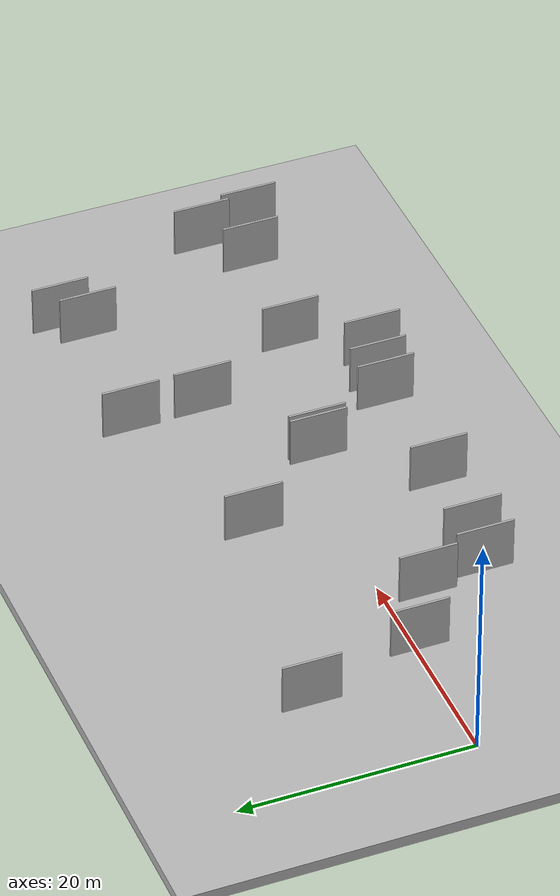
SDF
<?xml version="1.0" encoding="utf-8"?>

<sdf version="1.6">

   <world name="default">

      <gui fullscreen="0">

         <camera name="user_camera">

            <pose>-15 0 4.57585 0 0 0</pose>

            <view_controller>orbit</view_controller>

         </camera>

      </gui>

      <scene>

         <sky>

           <clouds>

             <speed>12</speed>

           </clouds>

         </sky>

         <ambient>0.4 0.4 0.4 1</ambient>

         <background>0.7 0.7 0.7 1</background>

         <shadows>1</shadows>

      </scene>

      <gravity>0 0 -9.8066</gravity>

      <magnetic_field>6e-06 2.3e-05 -4.2e-05</magnetic_field>

      <physics default="0" name="default_physics" type="ode">

         <ode>

            <solver>

               <type>quick</type>

               <iters>10</iters>

               <sor>1.0</sor>

               <use_dynamic_moi_rescaling>0</use_dynamic_moi_rescaling>

            </solver>

            <constraints>

               <cfm>0</cfm>

               <erp>0.2</erp>

               <contact_max_correcting_vel>100</contact_max_correcting_vel>

               <contact_surface_layer>0.001</contact_surface_layer>

            </constraints>

         </ode>

         <max_step_size>0.004</max_step_size>

         <real_time_factor>1</real_time_factor>

         <real_time_update_rate>250</real_time_update_rate>

      </physics>

      <light name="sun" type="directional">

         <cast_shadows>1</cast_shadows>

         <pose>0 0 10 0 0 0</pose>

         <diffuse>0.8 0.8 0.8 1</diffuse>

         <specular>0.2 0.2 0.2 1</specular>

         <attenuation>

            <range>1000</range>

            <constant>0.9</constant>

            <linear>0.01</linear>

            <quadratic>0.001</quadratic>

         </attenuation>

         <direction>-0.5 0.1 -0.9</direction>

      </light>

      <include>

         <name>ground_plane_1</name>

         <uri>model://HANNAS_ground_plane</uri>

         <pose>0 0 0  0 0 0</pose>

      </include>

      <include>

         <name>ground_plane_2</name>

         <uri>model://HANNAS_ground_plane</uri>

         <pose>100 0 0  0 0 0</pose>

      </include>

      <model name="HANNAS_wall_1">

         <static>1</static>

         <pose frame="">45.6797 4.8200 0.0 0.000000 0.000000 1.570796</pose>

         <link name="link">

            <pose frame="">0 0 2.50 0 0 0</pose>

            <collision name="collision">

               <geometry>

                  <box>

                     <size>5.00 0.2 5.00</size>

                  </box>

               </geometry>

               <max_contacts>10</max_contacts>

               <surface>

                  <contact>

                     <ode/>

                  </contact>

                  <bounce/>

                  <friction>

                     <torsional>

                        <ode/>

                     </torsional>

                     <ode/>

                  </friction>

               </surface>

            </collision>

            <visual name="visual">

               <cast_shadows>0</cast_shadows>

               <geometry>

                  <box>

                     <size>5.00 0.2 5.00</size>

                  </box>

               </geometry>

               <material>

                  <script>

                     <uri>model://HANNAS_wall/materials/scripts</uri>

                     <uri>model://HANNAS_wall/materials/textures</uri>

                     <name>vrc/HANNAS_wall</name>

                  </script>

               </material>

            </visual>

            <self_collide>0</self_collide>

            <enable_wind>0</enable_wind>

            <kinematic>0</kinematic>

         </link>

      </model>

      <model name="HANNAS_wall_2">

         <static>1</static>

         <pose frame="">29.6379 6.7200 0.0 0.000000 0.000000 1.570796</pose>

         <link name="link">

            <pose frame="">0 0 2.50 0 0 0</pose>

            <collision name="collision">

               <geometry>

                  <box>

                     <size>5.00 0.2 5.00</size>

                  </box>

               </geometry>

               <max_contacts>10</max_contacts>

               <surface>

                  <contact>

                     <ode/>

                  </contact>

                  <bounce/>

                  <friction>

                     <torsional>

                        <ode/>

                     </torsional>

                     <ode/>

                  </friction>

               </surface>

            </collision>

            <visual name="visual">

               <cast_shadows>0</cast_shadows>

               <geometry>

                  <box>

                     <size>5.00 0.2 5.00</size>

                  </box>

               </geometry>

               <material>

                  <script>

                     <uri>model://HANNAS_wall/materials/scripts</uri>

                     <uri>model://HANNAS_wall/materials/textures</uri>

                     <name>vrc/HANNAS_wall</name>

                  </script>

               </material>

            </visual>

            <self_collide>0</self_collide>

            <enable_wind>0</enable_wind>

            <kinematic>0</kinematic>

         </link>

      </model>

      <model name="HANNAS_wall_3">

         <static>1</static>

         <pose frame="">21.6949 -8.9575 0.0 0.000000 0.000000 1.570796</pose>

         <link name="link">

            <pose frame="">0 0 2.50 0 0 0</pose>

            <collision name="collision">

               <geometry>

                  <box>

                     <size>5.00 0.2 5.00</size>

                  </box>

               </geometry>

               <max_contacts>10</max_contacts>

               <surface>

                  <contact>

                     <ode/>

                  </contact>

                  <bounce/>

                  <friction>

                     <torsional>

                        <ode/>

                     </torsional>

                     <ode/>

                  </friction>

               </surface>

            </collision>

            <visual name="visual">

               <cast_shadows>0</cast_shadows>

               <geometry>

                  <box>

                     <size>5.00 0.2 5.00</size>

                  </box>

               </geometry>

               <material>

                  <script>

                     <uri>model://HANNAS_wall/materials/scripts</uri>

                     <uri>model://HANNAS_wall/materials/textures</uri>

                     <name>vrc/HANNAS_wall</name>

                  </script>

               </material>

            </visual>

            <self_collide>0</self_collide>

            <enable_wind>0</enable_wind>

            <kinematic>0</kinematic>

         </link>

      </model>

      <model name="HANNAS_wall_4">

         <static>1</static>

         <pose frame="">60.6124 11.7490 0.0 0.000000 0.000000 1.570796</pose>

         <link name="link">

            <pose frame="">0 0 2.50 0 0 0</pose>

            <collision name="collision">

               <geometry>

                  <box>

                     <size>5.00 0.2 5.00</size>

                  </box>

               </geometry>

               <max_contacts>10</max_contacts>

               <surface>

                  <contact>

                     <ode/>

                  </contact>

                  <bounce/>

                  <friction>

                     <torsional>

                        <ode/>

                     </torsional>

                     <ode/>

                  </friction>

               </surface>

            </collision>

            <visual name="visual">

               <cast_shadows>0</cast_shadows>

               <geometry>

                  <box>

                     <size>5.00 0.2 5.00</size>

                  </box>

               </geometry>

               <material>

                  <script>

                     <uri>model://HANNAS_wall/materials/scripts</uri>

                     <uri>model://HANNAS_wall/materials/textures</uri>

                     <name>vrc/HANNAS_wall</name>

                  </script>

               </material>

            </visual>

            <self_collide>0</self_collide>

            <enable_wind>0</enable_wind>

            <kinematic>0</kinematic>

         </link>

      </model>

      <model name="HANNAS_wall_5">

         <static>1</static>

         <pose frame="">46.8359 -10.7988 0.0 0.000000 0.000000 1.570796</pose>

         <link name="link">

            <pose frame="">0 0 2.50 0 0 0</pose>

            <collision name="collision">

               <geometry>

                  <box>

                     <size>5.00 0.2 5.00</size>

                  </box>

               </geometry>

               <max_contacts>10</max_contacts>

               <surface>

                  <contact>

                     <ode/>

                  </contact>

                  <bounce/>

                  <friction>

                     <torsional>

                        <ode/>

                     </torsional>

                     <ode/>

                  </friction>

               </surface>

            </collision>

            <visual name="visual">

               <cast_shadows>0</cast_shadows>

               <geometry>

                  <box>

                     <size>5.00 0.2 5.00</size>

                  </box>

               </geometry>

               <material>

                  <script>

                     <uri>model://HANNAS_wall/materials/scripts</uri>

                     <uri>model://HANNAS_wall/materials/textures</uri>

                     <name>vrc/HANNAS_wall</name>

                  </script>

               </material>

            </visual>

            <self_collide>0</self_collide>

            <enable_wind>0</enable_wind>

            <kinematic>0</kinematic>

         </link>

      </model>

      <model name="HANNAS_wall_6">

         <static>1</static>

         <pose frame="">58.5026 10.0722 0.0 0.000000 0.000000 1.570796</pose>

         <link name="link">

            <pose frame="">0 0 2.50 0 0 0</pose>

            <collision name="collision">

               <geometry>

                  <box>

                     <size>5.00 0.2 5.00</size>

                  </box>

               </geometry>

               <max_contacts>10</max_contacts>

               <surface>

                  <contact>

                     <ode/>

                  </contact>

                  <bounce/>

                  <friction>

                     <torsional>

                        <ode/>

                     </torsional>

                     <ode/>

                  </friction>

               </surface>

            </collision>

            <visual name="visual">

               <cast_shadows>0</cast_shadows>

               <geometry>

                  <box>

                     <size>5.00 0.2 5.00</size>

                  </box>

               </geometry>

               <material>

                  <script>

                     <uri>model://HANNAS_wall/materials/scripts</uri>

                     <uri>model://HANNAS_wall/materials/textures</uri>

                     <name>vrc/HANNAS_wall</name>

                  </script>

               </material>

            </visual>

            <self_collide>0</self_collide>

            <enable_wind>0</enable_wind>

            <kinematic>0</kinematic>

         </link>

      </model>

      <model name="HANNAS_wall_7">

         <static>1</static>

         <pose frame="">8.7439 10.2297 0.0 0.000000 0.000000 1.570796</pose>

         <link name="link">

            <pose frame="">0 0 2.50 0 0 0</pose>

            <collision name="collision">

               <geometry>

                  <box>

                     <size>5.00 0.2 5.00</size>

                  </box>

               </geometry>

               <max_contacts>10</max_contacts>

               <surface>

                  <contact>

                     <ode/>

                  </contact>

                  <bounce/>

                  <friction>

                     <torsional>

                        <ode/>

                     </torsional>

                     <ode/>

                  </friction>

               </surface>

            </collision>

            <visual name="visual">

               <cast_shadows>0</cast_shadows>

               <geometry>

                  <box>

                     <size>5.00 0.2 5.00</size>

                  </box>

               </geometry>

               <material>

                  <script>

                     <uri>model://HANNAS_wall/materials/scripts</uri>

                     <uri>model://HANNAS_wall/materials/textures</uri>

                     <name>vrc/HANNAS_wall</name>

                  </script>

               </material>

            </visual>

            <self_collide>0</self_collide>

            <enable_wind>0</enable_wind>

            <kinematic>0</kinematic>

         </link>

      </model>

      <model name="HANNAS_wall_8">

         <static>1</static>

         <pose frame="">62.4866 -6.1760 0.0 0.000000 0.000000 1.570796</pose>

         <link name="link">

            <pose frame="">0 0 2.50 0 0 0</pose>

            <collision name="collision">

               <geometry>

                  <box>

                     <size>5.00 0.2 5.00</size>

                  </box>

               </geometry>

               <max_contacts>10</max_contacts>

               <surface>

                  <contact>

                     <ode/>

                  </contact>

                  <bounce/>

                  <friction>

                     <torsional>

                        <ode/>

                     </torsional>

                     <ode/>

                  </friction>

               </surface>

            </collision>

            <visual name="visual">

               <cast_shadows>0</cast_shadows>

               <geometry>

                  <box>

                     <size>5.00 0.2 5.00</size>

                  </box>

               </geometry>

               <material>

                  <script>

                     <uri>model://HANNAS_wall/materials/scripts</uri>

                     <uri>model://HANNAS_wall/materials/textures</uri>

                     <name>vrc/HANNAS_wall</name>

                  </script>

               </material>

            </visual>

            <self_collide>0</self_collide>

            <enable_wind>0</enable_wind>

            <kinematic>0</kinematic>

         </link>

      </model>

      <model name="HANNAS_wall_9">

         <static>1</static>

         <pose frame="">29.7878 -9.4977 0.0 0.000000 0.000000 1.570796</pose>

         <link name="link">

            <pose frame="">0 0 2.50 0 0 0</pose>

            <collision name="collision">

               <geometry>

                  <box>

                     <size>5.00 0.2 5.00</size>

                  </box>

               </geometry>

               <max_contacts>10</max_contacts>

               <surface>

                  <contact>

                     <ode/>

                  </contact>

                  <bounce/>

                  <friction>

                     <torsional>

                        <ode/>

                     </torsional>

                     <ode/>

                  </friction>

               </surface>

            </collision>

            <visual name="visual">

               <cast_shadows>0</cast_shadows>

               <geometry>

                  <box>

                     <size>5.00 0.2 5.00</size>

                  </box>

               </geometry>

               <material>

                  <script>

                     <uri>model://HANNAS_wall/materials/scripts</uri>

                     <uri>model://HANNAS_wall/materials/textures</uri>

                     <name>vrc/HANNAS_wall</name>

                  </script>

               </material>

            </visual>

            <self_collide>0</self_collide>

            <enable_wind>0</enable_wind>

            <kinematic>0</kinematic>

         </link>

      </model>

      <model name="HANNAS_wall_10">

         <static>1</static>

         <pose frame="">67.0738 -7.8029 0.0 0.000000 0.000000 1.570796</pose>

         <link name="link">

            <pose frame="">0 0 2.50 0 0 0</pose>

            <collision name="collision">

               <geometry>

                  <box>

                     <size>5.00 0.2 5.00</size>

                  </box>

               </geometry>

               <max_contacts>10</max_contacts>

               <surface>

                  <contact>

                     <ode/>

                  </contact>

                  <bounce/>

                  <friction>

                     <torsional>

                        <ode/>

                     </torsional>

                     <ode/>

                  </friction>

               </surface>

            </collision>

            <visual name="visual">

               <cast_shadows>0</cast_shadows>

               <geometry>

                  <box>

                     <size>5.00 0.2 5.00</size>

                  </box>

               </geometry>

               <material>

                  <script>

                     <uri>model://HANNAS_wall/materials/scripts</uri>

                     <uri>model://HANNAS_wall/materials/textures</uri>

                     <name>vrc/HANNAS_wall</name>

                  </script>

               </material>

            </visual>

            <self_collide>0</self_collide>

            <enable_wind>0</enable_wind>

            <kinematic>0</kinematic>

         </link>

      </model>

      <model name="HANNAS_wall_11">

         <static>1</static>

         <pose frame="">37.1146 -1.8498 0.0 0.000000 0.000000 1.570796</pose>

         <link name="link">

            <pose frame="">0 0 2.50 0 0 0</pose>

            <collision name="collision">

               <geometry>

                  <box>

                     <size>5.00 0.2 5.00</size>

                  </box>

               </geometry>

               <max_contacts>10</max_contacts>

               <surface>

                  <contact>

                     <ode/>

                  </contact>

                  <bounce/>

                  <friction>

                     <torsional>

                        <ode/>

                     </torsional>

                     <ode/>

                  </friction>

               </surface>

            </collision>

            <visual name="visual">

               <cast_shadows>0</cast_shadows>

               <geometry>

                  <box>

                     <size>5.00 0.2 5.00</size>

                  </box>

               </geometry>

               <material>

                  <script>

                     <uri>model://HANNAS_wall/materials/scripts</uri>

                     <uri>model://HANNAS_wall/materials/textures</uri>

                     <name>vrc/HANNAS_wall</name>

                  </script>

               </material>

            </visual>

            <self_collide>0</self_collide>

            <enable_wind>0</enable_wind>

            <kinematic>0</kinematic>

         </link>

      </model>

      <model name="HANNAS_wall_12">

         <static>1</static>

         <pose frame="">11.6493 -0.1156 0.0 0.000000 0.000000 1.570796</pose>

         <link name="link">

            <pose frame="">0 0 2.50 0 0 0</pose>

            <collision name="collision">

               <geometry>

                  <box>

                     <size>5.00 0.2 5.00</size>

                  </box>

               </geometry>

               <max_contacts>10</max_contacts>

               <surface>

                  <contact>

                     <ode/>

                  </contact>

                  <bounce/>

                  <friction>

                     <torsional>

                        <ode/>

                     </torsional>

                     <ode/>

                  </friction>

               </surface>

            </collision>

            <visual name="visual">

               <cast_shadows>0</cast_shadows>

               <geometry>

                  <box>

                     <size>5.00 0.2 5.00</size>

                  </box>

               </geometry>

               <material>

                  <script>

                     <uri>model://HANNAS_wall/materials/scripts</uri>

                     <uri>model://HANNAS_wall/materials/textures</uri>

                     <name>vrc/HANNAS_wall</name>

                  </script>

               </material>

            </visual>

            <self_collide>0</self_collide>

            <enable_wind>0</enable_wind>

            <kinematic>0</kinematic>

         </link>

      </model>

      <model name="HANNAS_wall_13">

         <static>1</static>

         <pose frame="">36.5242 -1.7394 0.0 0.000000 0.000000 1.570796</pose>

         <link name="link">

            <pose frame="">0 0 2.50 0 0 0</pose>

            <collision name="collision">

               <geometry>

                  <box>

                     <size>5.00 0.2 5.00</size>

                  </box>

               </geometry>

               <max_contacts>10</max_contacts>

               <surface>

                  <contact>

                     <ode/>

                  </contact>

                  <bounce/>

                  <friction>

                     <torsional>

                        <ode/>

                     </torsional>

                     <ode/>

                  </friction>

               </surface>

            </collision>

            <visual name="visual">

               <cast_shadows>0</cast_shadows>

               <geometry>

                  <box>

                     <size>5.00 0.2 5.00</size>

                  </box>

               </geometry>

               <material>

                  <script>

                     <uri>model://HANNAS_wall/materials/scripts</uri>

                     <uri>model://HANNAS_wall/materials/textures</uri>

                     <name>vrc/HANNAS_wall</name>

                  </script>

               </material>

            </visual>

            <self_collide>0</self_collide>

            <enable_wind>0</enable_wind>

            <kinematic>0</kinematic>

         </link>

      </model>

      <model name="HANNAS_wall_14">

         <static>1</static>

         <pose frame="">43.4509 -9.8974 0.0 0.000000 0.000000 1.570796</pose>

         <link name="link">

            <pose frame="">0 0 2.50 0 0 0</pose>

            <collision name="collision">

               <geometry>

                  <box>

                     <size>5.00 0.2 5.00</size>

                  </box>

               </geometry>

               <max_contacts>10</max_contacts>

               <surface>

                  <contact>

                     <ode/>

                  </contact>

                  <bounce/>

                  <friction>

                     <torsional>

                        <ode/>

                     </torsional>

                     <ode/>

                  </friction>

               </surface>

            </collision>

            <visual name="visual">

               <cast_shadows>0</cast_shadows>

               <geometry>

                  <box>

                     <size>5.00 0.2 5.00</size>

                  </box>

               </geometry>

               <material>

                  <script>

                     <uri>model://HANNAS_wall/materials/scripts</uri>

                     <uri>model://HANNAS_wall/materials/textures</uri>

                     <name>vrc/HANNAS_wall</name>

                  </script>

               </material>

            </visual>

            <self_collide>0</self_collide>

            <enable_wind>0</enable_wind>

            <kinematic>0</kinematic>

         </link>

      </model>

      <model name="HANNAS_wall_15">

         <static>1</static>

         <pose frame="">17.4324 -3.3036 0.0 0.000000 0.000000 1.570796</pose>

         <link name="link">

            <pose frame="">0 0 2.50 0 0 0</pose>

            <collision name="collision">

               <geometry>

                  <box>

                     <size>5.00 0.2 5.00</size>

                  </box>

               </geometry>

               <max_contacts>10</max_contacts>

               <surface>

                  <contact>

                     <ode/>

                  </contact>

                  <bounce/>

                  <friction>

                     <torsional>

                        <ode/>

                     </torsional>

                     <ode/>

                  </friction>

               </surface>

            </collision>

            <visual name="visual">

               <cast_shadows>0</cast_shadows>

               <geometry>

                  <box>

                     <size>5.00 0.2 5.00</size>

                  </box>

               </geometry>

               <material>

                  <script>

                     <uri>model://HANNAS_wall/materials/scripts</uri>

                     <uri>model://HANNAS_wall/materials/textures</uri>

                     <name>vrc/HANNAS_wall</name>

                  </script>

               </material>

            </visual>

            <self_collide>0</self_collide>

            <enable_wind>0</enable_wind>

            <kinematic>0</kinematic>

         </link>

      </model>

      <model name="HANNAS_wall_16">

         <static>1</static>

         <pose frame="">18.4220 -8.6342 0.0 0.000000 0.000000 1.570796</pose>

         <link name="link">

            <pose frame="">0 0 2.50 0 0 0</pose>

            <collision name="collision">

               <geometry>

                  <box>

                     <size>5.00 0.2 5.00</size>

                  </box>

               </geometry>

               <max_contacts>10</max_contacts>

               <surface>

                  <contact>

                     <ode/>

                  </contact>

                  <bounce/>

                  <friction>

                     <torsional>

                        <ode/>

                     </torsional>

                     <ode/>

                  </friction>

               </surface>

            </collision>

            <visual name="visual">

               <cast_shadows>0</cast_shadows>

               <geometry>

                  <box>

                     <size>5.00 0.2 5.00</size>

                  </box>

               </geometry>

               <material>

                  <script>

                     <uri>model://HANNAS_wall/materials/scripts</uri>

                     <uri>model://HANNAS_wall/materials/textures</uri>

                     <name>vrc/HANNAS_wall</name>

                  </script>

               </material>

            </visual>

            <self_collide>0</self_collide>

            <enable_wind>0</enable_wind>

            <kinematic>0</kinematic>

         </link>

      </model>

      <model name="HANNAS_wall_17">

         <static>1</static>

         <pose frame="">51.0992 -5.1834 0.0 0.000000 0.000000 1.570796</pose>

         <link name="link">

            <pose frame="">0 0 2.50 0 0 0</pose>

            <collision name="collision">

               <geometry>

                  <box>

                     <size>5.00 0.2 5.00</size>

                  </box>

               </geometry>

               <max_contacts>10</max_contacts>

               <surface>

                  <contact>

                     <ode/>

                  </contact>

                  <bounce/>

                  <friction>

                     <torsional>

                        <ode/>

                     </torsional>

                     <ode/>

                  </friction>

               </surface>

            </collision>

            <visual name="visual">

               <cast_shadows>0</cast_shadows>

               <geometry>

                  <box>

                     <size>5.00 0.2 5.00</size>

                  </box>

               </geometry>

               <material>

                  <script>

                     <uri>model://HANNAS_wall/materials/scripts</uri>

                     <uri>model://HANNAS_wall/materials/textures</uri>

                     <name>vrc/HANNAS_wall</name>

                  </script>

               </material>

            </visual>

            <self_collide>0</self_collide>

            <enable_wind>0</enable_wind>

            <kinematic>0</kinematic>

         </link>

      </model>

      <model name="HANNAS_wall_18">

         <static>1</static>

         <pose frame="">41.0133 -9.5649 0.0 0.000000 0.000000 1.570796</pose>

         <link name="link">

            <pose frame="">0 0 2.50 0 0 0</pose>

            <collision name="collision">

               <geometry>

                  <box>

                     <size>5.00 0.2 5.00</size>

                  </box>

               </geometry>

               <max_contacts>10</max_contacts>

               <surface>

                  <contact>

                     <ode/>

                  </contact>

                  <bounce/>

                  <friction>

                     <torsional>

                        <ode/>

                     </torsional>

                     <ode/>

                  </friction>

               </surface>

            </collision>

            <visual name="visual">

               <cast_shadows>0</cast_shadows>

               <geometry>

                  <box>

                     <size>5.00 0.2 5.00</size>

                  </box>

               </geometry>

               <material>

                  <script>

                     <uri>model://HANNAS_wall/materials/scripts</uri>

                     <uri>model://HANNAS_wall/materials/textures</uri>

                     <name>vrc/HANNAS_wall</name>

                  </script>

               </material>

            </visual>

            <self_collide>0</self_collide>

            <enable_wind>0</enable_wind>

            <kinematic>0</kinematic>

         </link>

      </model>

      <model name="HANNAS_wall_19">

         <static>1</static>

         <pose frame="">66.3753 -3.2434 0.0 0.000000 0.000000 1.570796</pose>

         <link name="link">

            <pose frame="">0 0 2.50 0 0 0</pose>

            <collision name="collision">

               <geometry>

                  <box>

                     <size>5.00 0.2 5.00</size>

                  </box>

               </geometry>

               <max_contacts>10</max_contacts>

               <surface>

                  <contact>

                     <ode/>

                  </contact>

                  <bounce/>

                  <friction>

                     <torsional>

                        <ode/>

                     </torsional>

                     <ode/>

                  </friction>

               </surface>

            </collision>

            <visual name="visual">

               <cast_shadows>0</cast_shadows>

               <geometry>

                  <box>

                     <size>5.00 0.2 5.00</size>

                  </box>

               </geometry>

               <material>

                  <script>

                     <uri>model://HANNAS_wall/materials/scripts</uri>

                     <uri>model://HANNAS_wall/materials/textures</uri>

                     <name>vrc/HANNAS_wall</name>

                  </script>

               </material>

            </visual>

            <self_collide>0</self_collide>

            <enable_wind>0</enable_wind>

            <kinematic>0</kinematic>

         </link>

      </model>

      <model name="HANNAS_wall_20">

         <static>1</static>

         <pose frame="">45.5497 11.1821 0.0 0.000000 0.000000 1.570796</pose>

         <link name="link">

            <pose frame="">0 0 2.50 0 0 0</pose>

            <collision name="collision">

               <geometry>

                  <box>

                     <size>5.00 0.2 5.00</size>

                  </box>

               </geometry>

               <max_contacts>10</max_contacts>

               <surface>

                  <contact>

                     <ode/>

                  </contact>

                  <bounce/>

                  <friction>

                     <torsional>

                        <ode/>

                     </torsional>

                     <ode/>

                  </friction>

               </surface>

            </collision>

            <visual name="visual">

               <cast_shadows>0</cast_shadows>

               <geometry>

                  <box>

                     <size>5.00 0.2 5.00</size>

                  </box>

               </geometry>

               <material>

                  <script>

                     <uri>model://HANNAS_wall/materials/scripts</uri>

                     <uri>model://HANNAS_wall/materials/textures</uri>

                     <name>vrc/HANNAS_wall</name>

                  </script>

               </material>

            </visual>

            <self_collide>0</self_collide>

            <enable_wind>0</enable_wind>

            <kinematic>0</kinematic>

         </link>

      </model>

   </world>

</sdf>

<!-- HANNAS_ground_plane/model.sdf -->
<sdf version="1.4">
<model name="HANNAS_ground_plane">
  <static>true</static>
    <link name="link">
      <collision name="collision">
        <geometry>
          <plane>
            <normal>0 0 1</normal>
            <size>1000 1000</size>
          </plane>
        </geometry>
        <surface>
          <friction>
            <ode>
              <mu>100</mu>
              <mu2>50</mu2>
            </ode>
          </friction>
        </surface>
      </collision>
      <visual name="visual">
        <cast_shadows>false</cast_shadows>
        <geometry>
          <plane>
            <normal>0 0 1</normal>
            <size>1000 1000</size>
          </plane>
        </geometry>
        <material>
          <script>
            <uri>model://HANNAS_ground_plane/materials/scripts/HANNAS_ground_plane.material</uri>
	    <uri>model://HANNAS_ground_plane/materials/textures</uri>
            <name>HANNASGroundPlane/Image</name>
          </script>
        </material>
      </visual>
    </link>
  </model>
</sdf>
